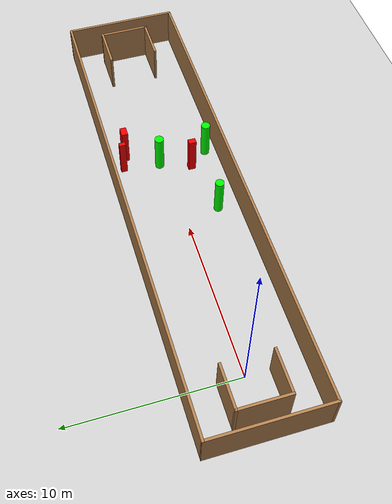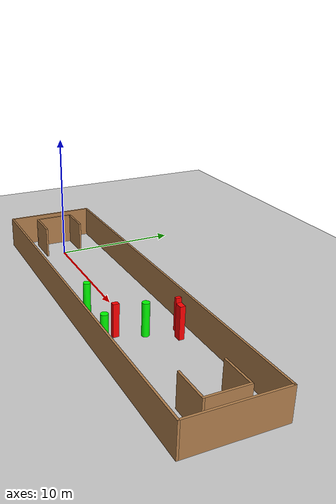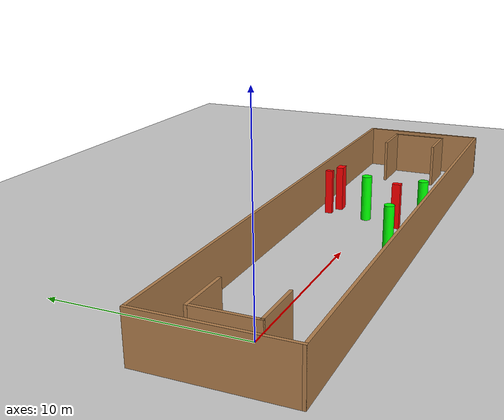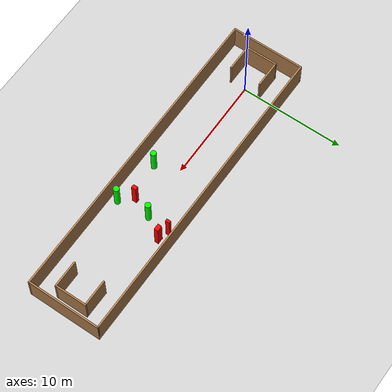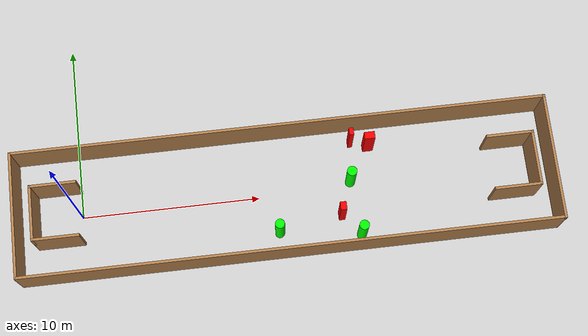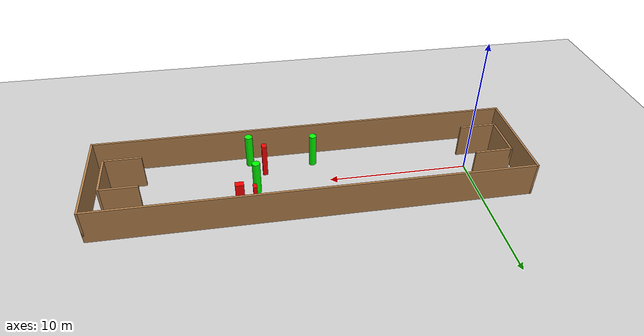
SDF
<sdf version="1.7">
 <world name="default">
  <light name="sun" type="directional">
   <pose>0 0 10 0 -0 0</pose>
   <diffuse>0.8 0.8 0.8 1</diffuse>
   <specular>0.2 0.2 0.2 1</specular>
   <attenuation>
    <range>1000</range>
    <constant>0.9</constant>
    <linear>0.01</linear>
    <quadratic>0.001</quadratic>
   </attenuation>
   <direction>-0.5 0.1 -0.9</direction>
   <spot><inner_angle>0</inner_angle><outer_angle>0</outer_angle><falloff>0</falloff></spot>
  </light>
  <model name="ground_plane">
   <static>1</static>
   <link name="link">
    <collision name="collision">
     <geometry><plane><normal>0 0 1</normal><size>100 100</size></plane></geometry>
     <surface>
      <contact><collide_bitmask>65535</collide_bitmask></contact>
      <friction><ode><mu>100</mu><mu2>50</mu2></ode></friction>
     </surface>
    </collision>
    <visual name="visual">
     <cast_shadows>0</cast_shadows>
     <geometry><plane><normal>0 0 1</normal><size>100 100</size></plane></geometry>
     <material>
      <script><uri>file://media/materials/scripts/gazebo.material</uri><name>Gazebo/Grey</name></script>
     </material>
    </visual>
   </link>
  </model>
  <gravity>0 0 -9.8</gravity>
  <magnetic_field>6e-06 2.3e-05 -4.2e-05</magnetic_field>
  <atmosphere type="adiabatic"/>
  <physics type="ode">
   <max_step_size>0.001</max_step_size>
   <real_time_factor>1</real_time_factor>
   <real_time_update_rate>1000</real_time_update_rate>
  </physics>
  <scene><ambient>0.4 0.4 0.4 1</ambient><background>0.7 0.7 0.7 1</background><shadows>1</shadows></scene>
  <spherical_coordinates>
   <surface_model>EARTH_WGS84</surface_model>
   <latitude_deg>0</latitude_deg>
   <longitude_deg>0</longitude_deg>
   <elevation>0</elevation>
   <heading_deg>0</heading_deg>
  </spherical_coordinates>
  <model name="my_base_walls">
   <link name="Wall_0">
    <collision name="Wall_0_Collision">
     <geometry><box><size>7.15 0.15 2.5</size></box></geometry>
     <pose>0 0 1.25 0 -0 0</pose>
    </collision>
    <visual name="Wall_0_Visual">
     <pose>0 0 1.25 0 -0 0</pose>
     <geometry><box><size>7.15 0.15 2.5</size></box></geometry>
     <material>
      <script><uri>file://media/materials/scripts/gazebo.material</uri><name>Gazebo/Wood</name></script>
      <ambient>1 1 1 1</ambient>
     </material>
     <meta><layer>0</layer></meta>
    </visual>
    <pose>-15 0 0 0 -0 1.5708</pose>
   </link>
   <link name="Wall_10">
    <collision name="Wall_10_Collision">
     <geometry><box><size>2.65 0.15 2.5</size></box></geometry>
     <pose>0 0 1.25 0 -0 0</pose>
    </collision>
    <visual name="Wall_10_Visual">
     <pose>0 0 1.25 0 -0 0</pose>
     <geometry><box><size>2.65 0.15 2.5</size></box></geometry>
     <material>
      <script><uri>file://media/materials/scripts/gazebo.material</uri><name>Gazebo/Wood</name></script>
      <ambient>1 1 1 1</ambient>
     </material>
     <meta><layer>0</layer></meta>
    </visual>
    <pose>-12.75 -1.5 0 0 -0 0</pose>
   </link>
   <link name="Wall_12">
    <collision name="Wall_12_Collision">
     <geometry><box><size>2.65 0.15 2.5</size></box></geometry>
     <pose>0 0 1.25 0 -0 0</pose>
    </collision>
    <visual name="Wall_12_Visual">
     <pose>0 0 1.25 0 -0 0</pose>
     <geometry><box><size>2.65 0.15 2.5</size></box></geometry>
     <material>
      <script><uri>file://media/materials/scripts/gazebo.material</uri><name>Gazebo/Wood</name></script>
      <ambient>1 1 1 1</ambient>
     </material>
     <meta><layer>0</layer></meta>
    </visual>
    <pose>-12.75 1.5 0 0 -0 0</pose>
   </link>
   <link name="Wall_14">
    <collision name="Wall_14_Collision">
     <geometry><box><size>3.15 0.15 2.5</size></box></geometry>
     <pose>0 0 1.25 0 -0 0</pose>
    </collision>
    <visual name="Wall_14_Visual">
     <pose>0 0 1.25 0 -0 0</pose>
     <geometry><box><size>3.15 0.15 2.5</size></box></geometry>
     <material>
      <script><uri>file://media/materials/scripts/gazebo.material</uri><name>Gazebo/Wood</name></script>
      <ambient>1 1 1 1</ambient>
     </material>
     <meta><layer>0</layer></meta>
    </visual>
    <pose>14 0 0 0 -0 -1.5708</pose>
   </link>
   <link name="Wall_15">
    <collision name="Wall_15_Collision">
     <geometry><box><size>2.65 0.15 2.5</size></box></geometry>
     <pose>0 0 1.25 0 -0 0</pose>
    </collision>
    <visual name="Wall_15_Visual">
     <pose>0 0 1.25 0 -0 0</pose>
     <geometry><box><size>2.65 0.15 2.5</size></box></geometry>
     <material>
      <script><uri>file://media/materials/scripts/gazebo.material</uri><name>Gazebo/Wood</name></script>
      <ambient>1 1 1 1</ambient>
     </material>
     <meta><layer>0</layer></meta>
    </visual>
    <pose>12.75 -1.5 0 0 -0 3.14159</pose>
   </link>
   <link name="Wall_17">
    <collision name="Wall_17_Collision">
     <geometry><box><size>2.65 0.15 2.5</size></box></geometry>
     <pose>0 0 1.25 0 -0 0</pose>
    </collision>
    <visual name="Wall_17_Visual">
     <pose>0 0 1.25 0 -0 0</pose>
     <geometry><box><size>2.65 0.15 2.5</size></box></geometry>
     <material>
      <script><uri>file://media/materials/scripts/gazebo.material</uri><name>Gazebo/Wood</name></script>
      <ambient>1 1 1 1</ambient>
     </material>
     <meta><layer>0</layer></meta>
    </visual>
    <pose>12.75 1.5 0 0 -0 3.14159</pose>
   </link>
   <link name="Wall_2">
    <collision name="Wall_2_Collision">
     <geometry><box><size>30.15 0.15 2.5</size></box></geometry>
     <pose>0 0 1.25 0 -0 0</pose>
    </collision>
    <visual name="Wall_2_Visual">
     <pose>0 0 1.25 0 -0 0</pose>
     <geometry><box><size>30.15 0.15 2.5</size></box></geometry>
     <material>
      <script><uri>file://media/materials/scripts/gazebo.material</uri><name>Gazebo/Wood</name></script>
      <ambient>1 1 1 1</ambient>
     </material>
     <meta><layer>0</layer></meta>
    </visual>
    <pose>-0 -3.5 0 0 -0 0</pose>
   </link>
   <link name="Wall_4">
    <collision name="Wall_4_Collision">
     <geometry><box><size>30.15 0.15 2.5</size></box></geometry>
     <pose>0 0 1.25 0 -0 0</pose>
    </collision>
    <visual name="Wall_4_Visual">
     <pose>0 0 1.25 0 -0 0</pose>
     <geometry><box><size>30.15 0.15 2.5</size></box></geometry>
     <material>
      <script><uri>file://media/materials/scripts/gazebo.material</uri><name>Gazebo/Wood</name></script>
      <ambient>1 1 1 1</ambient>
     </material>
     <meta><layer>0</layer></meta>
    </visual>
    <pose>-0 3.5 0 0 -0 0</pose>
   </link>
   <link name="Wall_6">
    <collision name="Wall_6_Collision">
     <geometry><box><size>7.15 0.15 2.5</size></box></geometry>
     <pose>0 0 1.25 0 -0 0</pose>
    </collision>
    <visual name="Wall_6_Visual">
     <pose>0 0 1.25 0 -0 0</pose>
     <geometry><box><size>7.15 0.15 2.5</size></box></geometry>
     <material>
      <script><uri>file://media/materials/scripts/gazebo.material</uri><name>Gazebo/Wood</name></script>
      <ambient>1 1 1 1</ambient>
     </material>
     <meta><layer>0</layer></meta>
    </visual>
    <pose>15 0 0 0 -0 -1.5708</pose>
   </link>
   <link name="Wall_9">
    <collision name="Wall_9_Collision">
     <geometry><box><size>3.15 0.15 2.5</size></box></geometry>
     <pose>0 0 1.25 0 -0 0</pose>
    </collision>
    <visual name="Wall_9_Visual">
     <pose>0 0 1.25 0 -0 0</pose>
     <geometry><box><size>3.15 0.15 2.5</size></box></geometry>
     <material>
      <script><uri>file://media/materials/scripts/gazebo.material</uri><name>Gazebo/Wood</name></script>
      <ambient>1 1 1 1</ambient>
     </material>
     <meta><layer>0</layer></meta>
    </visual>
    <pose>-14 0 0 0 -0 -1.5708</pose>
   </link>
   <static>1</static>
   <pose>11.5 0 0 0 -0 0</pose>
  </model>
  <model name="cylinder1">
   <static>1</static>
   <link name="link">
    <inertial>
     <mass>1</mass>
     <inertia><ixx>0.5</ixx><ixy>0</ixy><ixz>0</ixz><iyy>0.5</iyy><iyz>0</iyz><izz>1</izz></inertia>
    </inertial>
    <collision name="collision">
     <geometry><cylinder><radius>0.2659534468292781</radius><length>2.5</length></cylinder></geometry>
    </collision>
    <visual name="visual">
     <geometry><cylinder><radius>0.2659534468292781</radius><length>2.5</length></cylinder></geometry>
     <material>
      <ambient>0 1 0 1</ambient>
      <diffuse>0 1 0 1</diffuse>
      <specular>0.1 0.1 0.1 1</specular>
      <emissive>0 0 0 0</emissive>
     </material>
    </visual>
   </link>
   <pose>10.959650614043653 -2.134411898333216 1.25 0 0 0</pose>
  </model>
  <model name="cylinder2">
   <static>1</static>
   <link name="link">
    <inertial>
     <mass>1</mass>
     <inertia><ixx>0.5</ixx><ixy>0</ixy><ixz>0</ixz><iyy>0.5</iyy><iyz>0</iyz><izz>1</izz></inertia>
    </inertial>
    <collision name="collision">
     <geometry><cylinder><radius>0.2772411632332682</radius><length>2.5</length></cylinder></geometry>
    </collision>
    <visual name="visual">
     <geometry><cylinder><radius>0.2772411632332682</radius><length>2.5</length></cylinder></geometry>
     <material>
      <ambient>0 1 0 1</ambient>
      <diffuse>0 1 0 1</diffuse>
      <specular>0.1 0.1 0.1 1</specular>
      <emissive>0 0 0 0</emissive>
     </material>
    </visual>
   </link>
   <pose>15.250064106663816 0.3713240417092587 1.25 0 0 0</pose>
  </model>
  <model name="cylinder3">
   <static>1</static>
   <link name="link">
    <inertial>
     <mass>1</mass>
     <inertia><ixx>0.5</ixx><ixy>0</ixy><ixz>0</ixz><iyy>0.5</iyy><iyz>0</iyz><izz>1</izz></inertia>
    </inertial>
    <collision name="collision">
     <geometry><cylinder><radius>0.2730586164917143</radius><length>2.5</length></cylinder></geometry>
    </collision>
    <visual name="visual">
     <geometry><cylinder><radius>0.2730586164917143</radius><length>2.5</length></cylinder></geometry>
     <material>
      <ambient>0 1 0 1</ambient>
      <diffuse>0 1 0 1</diffuse>
      <specular>0.1 0.1 0.1 1</specular>
      <emissive>0 0 0 0</emissive>
     </material>
    </visual>
   </link>
   <pose>15.528450957742132 -2.7194435038897735 1.25 0 0 0</pose>
  </model>
  <model name="box1">
   <static>1</static>
   <link name="link">
    <inertial>
     <mass>1</mass>
     <inertia><ixx>0.083</ixx><ixy>0</ixy><ixz>0</ixz><iyy>0.083</iyy><iyz>0</iyz><izz>0.083</izz></inertia>
    </inertial>
    <collision name="collision">
     <geometry><box><size>0.3407223904313667 0.45518374954286106 2.5</size></box></geometry>
    </collision>
    <visual name="visual">
     <geometry><box><size>0.3407223904313667 0.45518374954286106 2.5</size></box></geometry>
     <material>
      <ambient>1 0 0 1</ambient>
      <diffuse>1 0 0 1</diffuse>
      <specular>0.1 0.1 0.1 1</specular>
      <emissive>0 0 0 0</emissive>
     </material>
    </visual>
    <sensor name="my_contact" type="contact">
     <contact><collision>box_collision</collision><topic>__default_topic__</topic></contact>
    </sensor>
   </link>
   <pose>14.527823659719301 -1.5267397307851478 1.25 0 0 0</pose>
  </model>
  <model name="box2">
   <static>1</static>
   <link name="link">
    <inertial>
     <mass>1</mass>
     <inertia><ixx>0.083</ixx><ixy>0</ixy><ixz>0</ixz><iyy>0.083</iyy><iyz>0</iyz><izz>0.083</izz></inertia>
    </inertial>
    <collision name="collision">
     <geometry><box><size>0.5844672850319929 0.3954073478571229 2.5</size></box></geometry>
    </collision>
    <visual name="visual">
     <geometry><box><size>0.5844672850319929 0.3954073478571229 2.5</size></box></geometry>
     <material>
      <ambient>1 0 0 1</ambient>
      <diffuse>1 0 0 1</diffuse>
      <specular>0.1 0.1 0.1 1</specular>
      <emissive>0 0 0 0</emissive>
     </material>
    </visual>
    <sensor name="my_contact" type="contact">
     <contact><collision>box_collision</collision><topic>__default_topic__</topic></contact>
    </sensor>
   </link>
   <pose>16.480272229272323 2.298755825093859 1.25 0 0 0</pose>
  </model>
  <model name="box3">
   <static>1</static>
   <link name="link">
    <inertial>
     <mass>1</mass>
     <inertia><ixx>0.083</ixx><ixy>0</ixy><ixz>0</ixz><iyy>0.083</iyy><iyz>0</iyz><izz>0.083</izz></inertia>
    </inertial>
    <collision name="collision">
     <geometry><box><size>0.24959359815208063 0.4019334936009139 2.5</size></box></geometry>
    </collision>
    <visual name="visual">
     <geometry><box><size>0.24959359815208063 0.4019334936009139 2.5</size></box></geometry>
     <material>
      <ambient>1 0 0 1</ambient>
      <diffuse>1 0 0 1</diffuse>
      <specular>0.1 0.1 0.1 1</specular>
      <emissive>0 0 0 0</emissive>
     </material>
    </visual>
    <sensor name="my_contact" type="contact">
     <contact><collision>box_collision</collision><topic>__default_topic__</topic></contact>
    </sensor>
   </link>
   <pose>15.49694123136965 2.64357318762078 1.25 0 0 0</pose>
  </model>
 </world>
</sdf>
